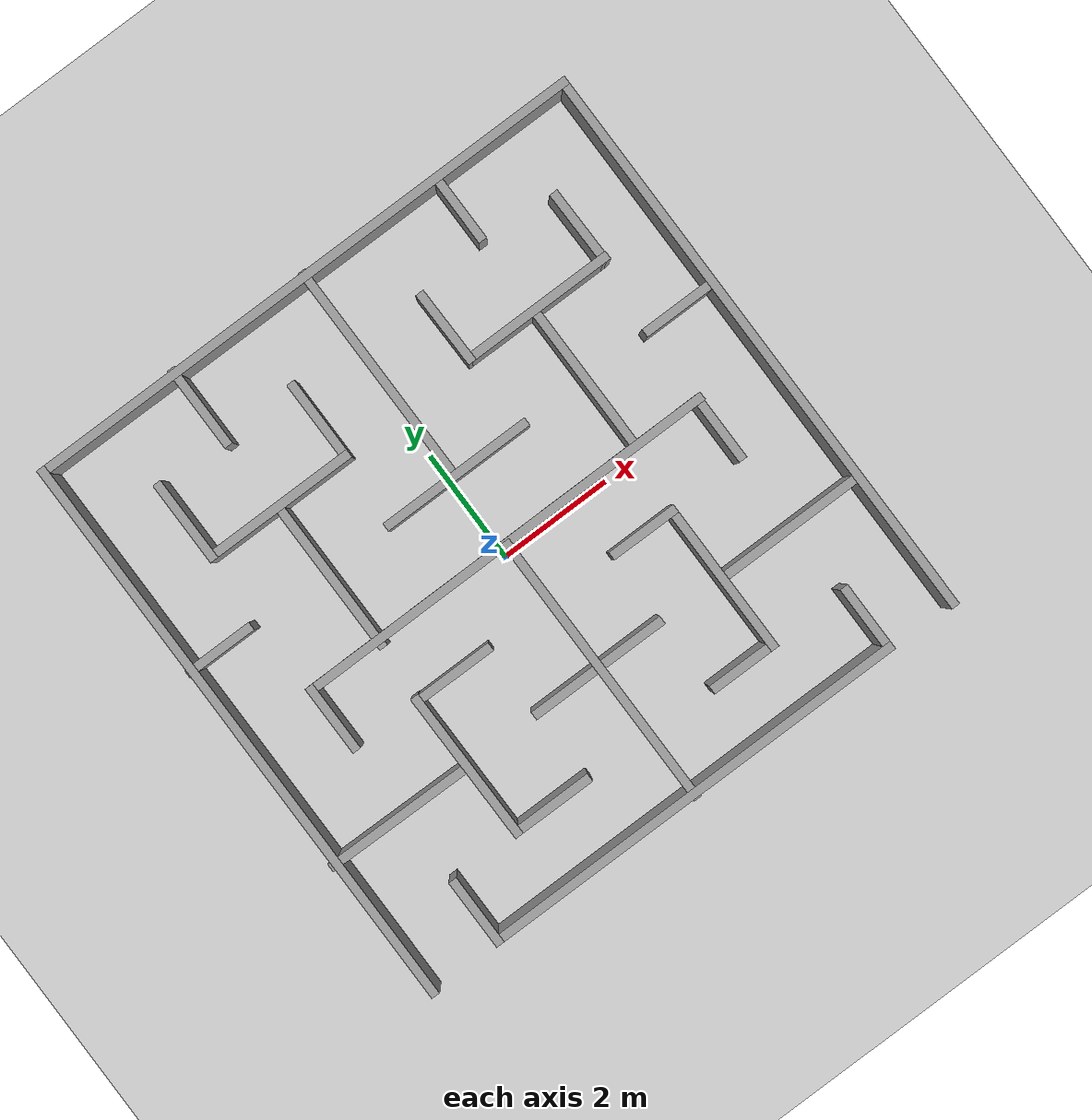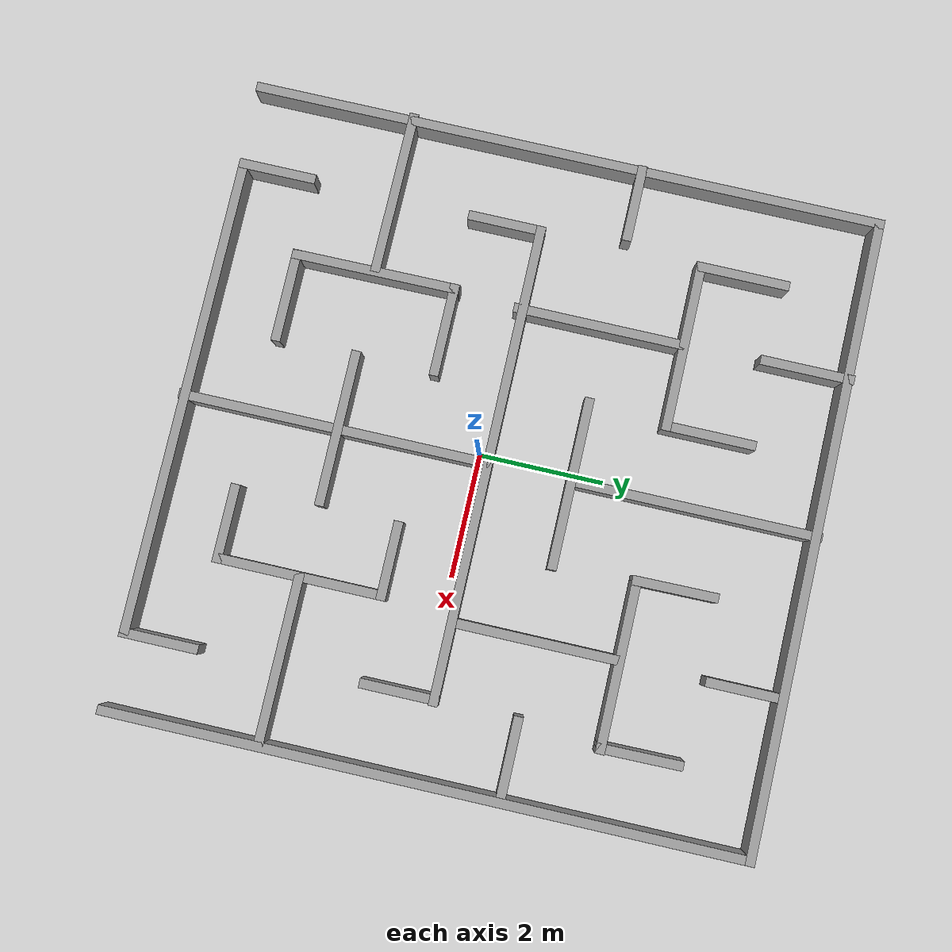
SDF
<sdf version="1.6">
 <world name="default">
  <light name="sun" type="directional">
   <pose>0 0 10 0 -0 0</pose>
   <diffuse>0.8 0.8 0.8 1</diffuse>
   <specular>0.1 0.1 0.1 1</specular>
   <attenuation>
    <range>1000</range>
    <constant>0.9</constant>
    <linear>0.01</linear>
    <quadratic>0.001</quadratic>
   </attenuation>
   <direction>-0.5 0.5 -1</direction>
  </light>
  <model name="ground_plane">
   <static>1</static>
   <link name="link">
    <collision name="collision">
     <geometry><plane><normal>0 0 1</normal><size>100 100</size></plane></geometry>
     <surface><friction><ode><mu>100</mu><mu2>50</mu2></ode></friction></surface>
    </collision>
    <visual name="visual">
     <cast_shadows>0</cast_shadows>
     <geometry><plane><normal>0 0 1</normal><size>100 100</size></plane></geometry>
     <material>
      <script><uri>file://media/materials/scripts/gazebo.material</uri><name>Gazebo/Grey</name></script>
     </material>
    </visual>
   </link>
  </model>
  <gravity>0 0 -9.8</gravity>
  <magnetic_field>6e-06 2.3e-05 -4.2e-05</magnetic_field>
  <atmosphere type="adiabatic"/>
  <physics name="default_physics" default="0" type="ode">
   <max_step_size>0.001</max_step_size>
   <real_time_factor>1</real_time_factor>
   <real_time_update_rate>1000</real_time_update_rate>
  </physics>
  <scene><ambient>0.4 0.4 0.4 1</ambient><background>0.7 0.7 0.7 1</background><shadows>1</shadows></scene>
  <spherical_coordinates>
   <surface_model>EARTH_WGS84</surface_model>
   <latitude_deg>0</latitude_deg>
   <longitude_deg>0</longitude_deg>
   <elevation>0</elevation>
   <heading_deg>0</heading_deg>
  </spherical_coordinates>
  <model name="laby2">
   <pose>0.072325 0.335601 0 0 -0 0</pose>
   <link name="Wall_0">
    <collision name="Wall_0_Collision">
     <geometry><box><size>10.25 0.15 0.5</size></box></geometry>
     <pose>0 0 0.25 0 -0 0</pose>
    </collision>
    <visual name="Wall_0_Visual">
     <pose>0 0 0.25 0 -0 0</pose>
     <geometry><box><size>10.25 0.15 0.5</size></box></geometry>
     <material>
      <script><uri>file://media/materials/scripts/gazebo.material</uri><name>Gazebo/Grey</name></script>
      <ambient>1 1 1 1</ambient>
     </material>
    </visual>
    <pose>-5.02834 -0.011541 0 0 -0 1.5708</pose>
   </link>
   <link name="Wall_1">
    <collision name="Wall_1_Collision">
     <geometry><box><size>10.25 0.15 0.5</size></box></geometry>
     <pose>0 0 0.25 0 -0 0</pose>
    </collision>
    <visual name="Wall_1_Visual">
     <pose>0 0 0.25 0 -0 0</pose>
     <geometry><box><size>10.25 0.15 0.5</size></box></geometry>
     <material>
      <script><uri>file://media/materials/scripts/gazebo.material</uri><name>Gazebo/Grey</name></script>
      <ambient>1 1 1 1</ambient>
     </material>
    </visual>
    <pose>0.021662 5.03846 0 0 -0 0</pose>
   </link>
   <link name="Wall_10">
    <collision name="Wall_10_Collision">
     <geometry><box><size>1.25 0.15 0.5</size></box></geometry>
     <pose>0 0 0.25 0 -0 0</pose>
    </collision>
    <visual name="Wall_10_Visual">
     <pose>0 0 0.25 0 -0 0</pose>
     <geometry><box><size>1.25 0.15 0.5</size></box></geometry>
     <material>
      <script><uri>file://media/materials/scripts/gazebo.material</uri><name>Gazebo/Grey</name></script>
      <ambient>1 1 1 1</ambient>
     </material>
    </visual>
    <pose>-3.74378 -4.47838 0 0 0 -1.5708</pose>
   </link>
   <link name="Wall_11">
    <collision name="Wall_11_Collision">
     <geometry><box><size>7.75 0.15 0.5</size></box></geometry>
     <pose>0 0 0.25 0 -0 0</pose>
    </collision>
    <visual name="Wall_11_Visual">
     <pose>0 0 0.25 0 -0 0</pose>
     <geometry><box><size>7.75 0.15 0.5</size></box></geometry>
     <material>
      <script><uri>file://media/materials/scripts/gazebo.material</uri><name>Gazebo/Grey</name></script>
      <ambient>1 1 1 1</ambient>
     </material>
    </visual>
    <pose>0.056224 -5.02838 0 0 -0 0</pose>
   </link>
   <link name="Wall_12">
    <collision name="Wall_12_Collision">
     <geometry><box><size>1.25 0.15 0.5</size></box></geometry>
     <pose>0 0 0.25 0 -0 0</pose>
    </collision>
    <visual name="Wall_12_Visual">
     <pose>0 0 0.25 0 -0 0</pose>
     <geometry><box><size>1.25 0.15 0.5</size></box></geometry>
     <material>
      <script><uri>file://media/materials/scripts/gazebo.material</uri><name>Gazebo/Grey</name></script>
      <ambient>1 1 1 1</ambient>
     </material>
    </visual>
    <pose>3.85622 -4.47838 0 0 -0 1.5708</pose>
   </link>
   <link name="Wall_14">
    <collision name="Wall_14_Collision">
     <geometry><box><size>5 0.15 0.5</size></box></geometry>
     <pose>0 0 0.25 0 -0 0</pose>
    </collision>
    <visual name="Wall_14_Visual">
     <pose>0 0 0.25 0 -0 0</pose>
     <geometry><box><size>5 0.15 0.5</size></box></geometry>
     <material>
      <script><uri>file://media/materials/scripts/gazebo.material</uri><name>Gazebo/Grey</name></script>
      <ambient>1 1 1 1</ambient>
     </material>
    </visual>
    <pose>0.069806 -2.62502 0 0 -0 1.5708</pose>
   </link>
   <link name="Wall_16">
    <collision name="Wall_16_Collision">
     <geometry><box><size>1.25 0.15 0.5</size></box></geometry>
     <pose>0 0 0.25 0 -0 0</pose>
    </collision>
    <visual name="Wall_16_Visual">
     <pose>0 0 0.25 0 -0 0</pose>
     <geometry><box><size>1.25 0.15 0.5</size></box></geometry>
     <material>
      <script><uri>file://media/materials/scripts/gazebo.material</uri><name>Gazebo/Grey</name></script>
      <ambient>1 1 1 1</ambient>
     </material>
    </visual>
    <pose>-3.72338 -0.727229 0 0 -0 1.5708</pose>
   </link>
   <link name="Wall_17">
    <collision name="Wall_17_Collision">
     <geometry><box><size>7.68775 0.15 0.5</size></box></geometry>
     <pose>0 0 0.25 0 -0 0</pose>
    </collision>
    <visual name="Wall_17_Visual">
     <pose>0 0 0.25 0 -0 0</pose>
     <geometry><box><size>7.68775 0.15 0.5</size></box></geometry>
     <material>
      <script><uri>file://media/materials/scripts/gazebo.material</uri><name>Gazebo/Grey</name></script>
      <ambient>1 1 1 1</ambient>
     </material>
    </visual>
    <pose>0.045481 -0.167172 0 0 -0 0.002668</pose>
   </link>
   <link name="Wall_18">
    <collision name="Wall_18_Collision">
     <geometry><box><size>1.25 0.15 0.5</size></box></geometry>
     <pose>0 0 0.25 0 -0 0</pose>
    </collision>
    <visual name="Wall_18_Visual">
     <pose>0 0 0.25 0 -0 0</pose>
     <geometry><box><size>1.25 0.15 0.5</size></box></geometry>
     <material>
      <script><uri>file://media/materials/scripts/gazebo.material</uri><name>Gazebo/Grey</name></script>
      <ambient>1 1 1 1</ambient>
     </material>
    </visual>
    <pose>3.79423 -0.707116 0 0 0 -1.5708</pose>
   </link>
   <link name="Wall_2">
    <collision name="Wall_2_Collision">
     <geometry><box><size>10.25 0.15 0.5</size></box></geometry>
     <pose>0 0 0.25 0 -0 0</pose>
    </collision>
    <visual name="Wall_2_Visual">
     <pose>0 0 0.25 0 -0 0</pose>
     <geometry><box><size>10.25 0.15 0.5</size></box></geometry>
     <material>
      <script><uri>file://media/materials/scripts/gazebo.material</uri><name>Gazebo/Grey</name></script>
      <ambient>1 1 1 1</ambient>
     </material>
    </visual>
    <pose>5.07166 -0.011541 0 0 0 -1.5708</pose>
   </link>
   <link name="Wall_20">
    <collision name="Wall_20_Collision">
     <geometry><box><size>2.5 0.15 0.5</size></box></geometry>
     <pose>0 0 0.25 0 -0 0</pose>
    </collision>
    <visual name="Wall_20_Visual">
     <pose>0 0 0.25 0 -0 0</pose>
     <geometry><box><size>2.5 0.15 0.5</size></box></geometry>
     <material>
      <script><uri>file://media/materials/scripts/gazebo.material</uri><name>Gazebo/Grey</name></script>
      <ambient>1 1 1 1</ambient>
     </material>
    </visual>
    <pose>0.049454 -2.57205 0 0 -0 0</pose>
   </link>
   <link name="Wall_23">
    <collision name="Wall_23_Collision">
     <geometry><box><size>2.71415 0.15 0.5</size></box></geometry>
     <pose>0 0 0.25 0 -0 0</pose>
    </collision>
    <visual name="Wall_23_Visual">
     <pose>0 0 0.25 0 -0 0</pose>
     <geometry><box><size>2.71415 0.15 0.5</size></box></geometry>
     <material>
      <script><uri>file://media/materials/scripts/gazebo.material</uri><name>Gazebo/Grey</name></script>
      <ambient>1 1 1 1</ambient>
     </material>
    </visual>
    <pose>-2.50233 -2.57244 0 0 0 -1.56558</pose>
   </link>
   <link name="Wall_27">
    <collision name="Wall_27_Collision">
     <geometry><box><size>2.64894 0.15 0.5</size></box></geometry>
     <pose>0 0 0.25 0 -0 0</pose>
    </collision>
    <visual name="Wall_27_Visual">
     <pose>0 0 0.25 0 -0 0</pose>
     <geometry><box><size>2.64894 0.15 0.5</size></box></geometry>
     <material>
      <script><uri>file://media/materials/scripts/gazebo.material</uri><name>Gazebo/Grey</name></script>
      <ambient>1 1 1 1</ambient>
     </material>
    </visual>
    <pose>-3.82163 -2.57487 0 0 0 -0.008095</pose>
   </link>
   <link name="Wall_30">
    <collision name="Wall_30_Collision">
     <geometry><box><size>1.5 0.15 0.5</size></box></geometry>
     <pose>0 0 0.25 0 -0 0</pose>
    </collision>
    <visual name="Wall_30_Visual">
     <pose>0 0 0.25 0 -0 0</pose>
     <geometry><box><size>1.5 0.15 0.5</size></box></geometry>
     <material>
      <script><uri>file://media/materials/scripts/gazebo.material</uri><name>Gazebo/Grey</name></script>
      <ambient>1 1 1 1</ambient>
     </material>
    </visual>
    <pose>-1.82064 -3.85444 0 0 -0 0</pose>
   </link>
   <link name="Wall_32">
    <collision name="Wall_32_Collision">
     <geometry><box><size>1.5 0.15 0.5</size></box></geometry>
     <pose>0 0 0.25 0 -0 0</pose>
    </collision>
    <visual name="Wall_32_Visual">
     <pose>0 0 0.25 0 -0 0</pose>
     <geometry><box><size>1.5 0.15 0.5</size></box></geometry>
     <material>
      <script><uri>file://media/materials/scripts/gazebo.material</uri><name>Gazebo/Grey</name></script>
      <ambient>1 1 1 1</ambient>
     </material>
    </visual>
    <pose>-1.83401 -1.30381 0 0 -0 0</pose>
   </link>
   <link name="Wall_34">
    <collision name="Wall_34_Collision">
     <geometry><box><size>1.25 0.15 0.5</size></box></geometry>
     <pose>0 0 0.25 0 -0 0</pose>
    </collision>
    <visual name="Wall_34_Visual">
     <pose>0 0 0.25 0 -0 0</pose>
     <geometry><box><size>1.25 0.15 0.5</size></box></geometry>
     <material>
      <script><uri>file://media/materials/scripts/gazebo.material</uri><name>Gazebo/Grey</name></script>
      <ambient>1 1 1 1</ambient>
     </material>
    </visual>
    <pose>1.8812 -1.30801 0 0 -0 0</pose>
   </link>
   <link name="Wall_35">
    <collision name="Wall_35_Collision">
     <geometry><box><size>2.75 0.15 0.5</size></box></geometry>
     <pose>0 0 0.25 0 -0 0</pose>
    </collision>
    <visual name="Wall_35_Visual">
     <pose>0 0 0.25 0 -0 0</pose>
     <geometry><box><size>2.75 0.15 0.5</size></box></geometry>
     <material>
      <script><uri>file://media/materials/scripts/gazebo.material</uri><name>Gazebo/Grey</name></script>
      <ambient>1 1 1 1</ambient>
     </material>
    </visual>
    <pose>2.4312 -2.60801 0 0 0 -1.5708</pose>
   </link>
   <link name="Wall_36">
    <collision name="Wall_36_Collision">
     <geometry><box><size>1.25 0.15 0.5</size></box></geometry>
     <pose>0 0 0.25 0 -0 0</pose>
    </collision>
    <visual name="Wall_36_Visual">
     <pose>0 0 0.25 0 -0 0</pose>
     <geometry><box><size>1.25 0.15 0.5</size></box></geometry>
     <material>
      <script><uri>file://media/materials/scripts/gazebo.material</uri><name>Gazebo/Grey</name></script>
      <ambient>1 1 1 1</ambient>
     </material>
    </visual>
    <pose>1.8812 -3.90801 0 0 -0 3.14159</pose>
   </link>
   <link name="Wall_38">
    <collision name="Wall_38_Collision">
     <geometry><box><size>2.75 0.15 0.5</size></box></geometry>
     <pose>0 0 0.25 0 -0 0</pose>
    </collision>
    <visual name="Wall_38_Visual">
     <pose>0 0 0.25 0 -0 0</pose>
     <geometry><box><size>2.75 0.15 0.5</size></box></geometry>
     <material>
      <script><uri>file://media/materials/scripts/gazebo.material</uri><name>Gazebo/Grey</name></script>
      <ambient>1 1 1 1</ambient>
     </material>
    </visual>
    <pose>3.73129 -2.61202 0 0 -0 0</pose>
   </link>
   <link name="Wall_40">
    <collision name="Wall_40_Collision">
     <geometry><box><size>1.25 0.15 0.5</size></box></geometry>
     <pose>0 0 0.25 0 -0 0</pose>
    </collision>
    <visual name="Wall_40_Visual">
     <pose>0 0 0.25 0 -0 0</pose>
     <geometry><box><size>1.25 0.15 0.5</size></box></geometry>
     <material>
      <script><uri>file://media/materials/scripts/gazebo.material</uri><name>Gazebo/Grey</name></script>
      <ambient>1 1 1 1</ambient>
     </material>
    </visual>
    <pose>-4.49484 1.18274 0 0 -0 0</pose>
   </link>
   <link name="Wall_42">
    <collision name="Wall_42_Collision">
     <geometry><box><size>1.25 0.15 0.5</size></box></geometry>
     <pose>0 0 0.25 0 -0 0</pose>
    </collision>
    <visual name="Wall_42_Visual">
     <pose>0 0 0.25 0 -0 0</pose>
     <geometry><box><size>1.25 0.15 0.5</size></box></geometry>
     <material>
      <script><uri>file://media/materials/scripts/gazebo.material</uri><name>Gazebo/Grey</name></script>
      <ambient>1 1 1 1</ambient>
     </material>
    </visual>
    <pose>4.37338 1.15916 0 0 -0 0</pose>
   </link>
   <link name="Wall_44">
    <collision name="Wall_44_Collision">
     <geometry><box><size>2.75 0.15 0.5</size></box></geometry>
     <pose>0 0 0.25 0 -0 0</pose>
    </collision>
    <visual name="Wall_44_Visual">
     <pose>0 0 0.25 0 -0 0</pose>
     <geometry><box><size>2.75 0.15 0.5</size></box></geometry>
     <material>
      <script><uri>file://media/materials/scripts/gazebo.material</uri><name>Gazebo/Grey</name></script>
      <ambient>1 1 1 1</ambient>
     </material>
    </visual>
    <pose>0.08979 1.15981 0 0 -0 0</pose>
   </link>
   <link name="Wall_46">
    <collision name="Wall_46_Collision">
     <geometry><box><size>1.5 0.15 0.5</size></box></geometry>
     <pose>0 0 0.25 0 -0 0</pose>
    </collision>
    <visual name="Wall_46_Visual">
     <pose>0 0 0.25 0 -0 0</pose>
     <geometry><box><size>1.5 0.15 0.5</size></box></geometry>
     <material>
      <script><uri>file://media/materials/scripts/gazebo.material</uri><name>Gazebo/Grey</name></script>
      <ambient>1 1 1 1</ambient>
     </material>
    </visual>
    <pose>-3.71859 3.09633 0 0 0 -1.5708</pose>
   </link>
   <link name="Wall_47">
    <collision name="Wall_47_Collision">
     <geometry><box><size>2.75 0.15 0.5</size></box></geometry>
     <pose>0 0 0.25 0 -0 0</pose>
    </collision>
    <visual name="Wall_47_Visual">
     <pose>0 0 0.25 0 -0 0</pose>
     <geometry><box><size>2.75 0.15 0.5</size></box></geometry>
     <material>
      <script><uri>file://media/materials/scripts/gazebo.material</uri><name>Gazebo/Grey</name></script>
      <ambient>1 1 1 1</ambient>
     </material>
    </visual>
    <pose>-2.41859 2.42132 0 0 -0 0</pose>
   </link>
   <link name="Wall_48">
    <collision name="Wall_48_Collision">
     <geometry><box><size>1.5 0.15 0.5</size></box></geometry>
     <pose>0 0 0.25 0 -0 0</pose>
    </collision>
    <visual name="Wall_48_Visual">
     <pose>0 0 0.25 0 -0 0</pose>
     <geometry><box><size>1.5 0.15 0.5</size></box></geometry>
     <material>
      <script><uri>file://media/materials/scripts/gazebo.material</uri><name>Gazebo/Grey</name></script>
      <ambient>1 1 1 1</ambient>
     </material>
    </visual>
    <pose>-1.11859 3.09633 0 0 -0 1.5708</pose>
   </link>
   <link name="Wall_50">
    <collision name="Wall_50_Collision">
     <geometry><box><size>2.75 0.15 0.5</size></box></geometry>
     <pose>0 0 0.25 0 -0 0</pose>
    </collision>
    <visual name="Wall_50_Visual">
     <pose>0 0 0.25 0 -0 0</pose>
     <geometry><box><size>2.75 0.15 0.5</size></box></geometry>
     <material>
      <script><uri>file://media/materials/scripts/gazebo.material</uri><name>Gazebo/Grey</name></script>
      <ambient>1 1 1 1</ambient>
     </material>
    </visual>
    <pose>-2.42724 1.05379 0 0 -0 1.5708</pose>
   </link>
   <link name="Wall_53">
    <collision name="Wall_53_Collision">
     <geometry><box><size>1.5 0.15 0.5</size></box></geometry>
     <pose>0 0 0.25 0 -0 0</pose>
    </collision>
    <visual name="Wall_53_Visual">
     <pose>0 0 0.25 0 -0 0</pose>
     <geometry><box><size>1.5 0.15 0.5</size></box></geometry>
     <material>
      <script><uri>file://media/materials/scripts/gazebo.material</uri><name>Gazebo/Grey</name></script>
      <ambient>1 1 1 1</ambient>
     </material>
    </visual>
    <pose>-2.47257 4.38654 0 0 0 -1.5708</pose>
   </link>
   <link name="Wall_55">
    <collision name="Wall_55_Collision">
     <geometry><box><size>1.25 0.15 0.5</size></box></geometry>
     <pose>0 0 0.25 0 -0 0</pose>
    </collision>
    <visual name="Wall_55_Visual">
     <pose>0 0 0.25 0 -0 0</pose>
     <geometry><box><size>1.25 0.15 0.5</size></box></geometry>
     <material>
      <script><uri>file://media/materials/scripts/gazebo.material</uri><name>Gazebo/Grey</name></script>
      <ambient>1 1 1 1</ambient>
     </material>
    </visual>
    <pose>2.60134 4.44916 0 0 0 -1.5708</pose>
   </link>
   <link name="Wall_57">
    <collision name="Wall_57_Collision">
     <geometry><box><size>1.36008 0.15 0.5</size></box></geometry>
     <pose>0 0 0.25 0 -0 0</pose>
    </collision>
    <visual name="Wall_57_Visual">
     <pose>0 0 0.25 0 -0 0</pose>
     <geometry><box><size>1.36008 0.15 0.5</size></box></geometry>
     <material>
      <script><uri>file://media/materials/scripts/gazebo.material</uri><name>Gazebo/Grey</name></script>
      <ambient>1 1 1 1</ambient>
     </material>
    </visual>
    <pose>1.32934 3.08409 0 0 0 -1.55943</pose>
   </link>
   <link name="Wall_58">
    <collision name="Wall_58_Collision">
     <geometry><box><size>2.75 0.15 0.5</size></box></geometry>
     <pose>0 0 0.25 0 -0 0</pose>
    </collision>
    <visual name="Wall_58_Visual">
     <pose>0 0 0.25 0 -0 0</pose>
     <geometry><box><size>2.75 0.15 0.5</size></box></geometry>
     <material>
      <script><uri>file://media/materials/scripts/gazebo.material</uri><name>Gazebo/Grey</name></script>
      <ambient>1 1 1 1</ambient>
     </material>
    </visual>
    <pose>2.64997 2.47909 0 0 -0 0</pose>
   </link>
   <link name="Wall_59">
    <collision name="Wall_59_Collision">
     <geometry><box><size>1.36008 0.15 0.5</size></box></geometry>
     <pose>0 0 0.25 0 -0 0</pose>
    </collision>
    <visual name="Wall_59_Visual">
     <pose>0 0 0.25 0 -0 0</pose>
     <geometry><box><size>1.36008 0.15 0.5</size></box></geometry>
     <material>
      <script><uri>file://media/materials/scripts/gazebo.material</uri><name>Gazebo/Grey</name></script>
      <ambient>1 1 1 1</ambient>
     </material>
    </visual>
    <pose>3.92934 3.08409 0 0 -0 1.58216</pose>
   </link>
   <link name="Wall_61">
    <collision name="Wall_61_Collision">
     <geometry><box><size>4 0.15 0.5</size></box></geometry>
     <pose>0 0 0.25 0 -0 0</pose>
    </collision>
    <visual name="Wall_61_Visual">
     <pose>0 0 0.25 0 -0 0</pose>
     <geometry><box><size>4 0.15 0.5</size></box></geometry>
     <material>
      <script><uri>file://media/materials/scripts/gazebo.material</uri><name>Gazebo/Grey</name></script>
      <ambient>1 1 1 1</ambient>
     </material>
    </visual>
    <pose>0.057651 3.13296 0 0 0 -1.5708</pose>
   </link>
   <link name="Wall_63">
    <collision name="Wall_63_Collision">
     <geometry><box><size>2.75 0.15 0.5</size></box></geometry>
     <pose>0 0 0.25 0 -0 0</pose>
    </collision>
    <visual name="Wall_63_Visual">
     <pose>0 0 0.25 0 -0 0</pose>
     <geometry><box><size>2.75 0.15 0.5</size></box></geometry>
     <material>
      <script><uri>file://media/materials/scripts/gazebo.material</uri><name>Gazebo/Grey</name></script>
      <ambient>1 1 1 1</ambient>
     </material>
    </visual>
    <pose>2.58774 1.17127 0 0 -0 1.5708</pose>
   </link>
   <static>1</static>
  </model>
 </world>
</sdf>
